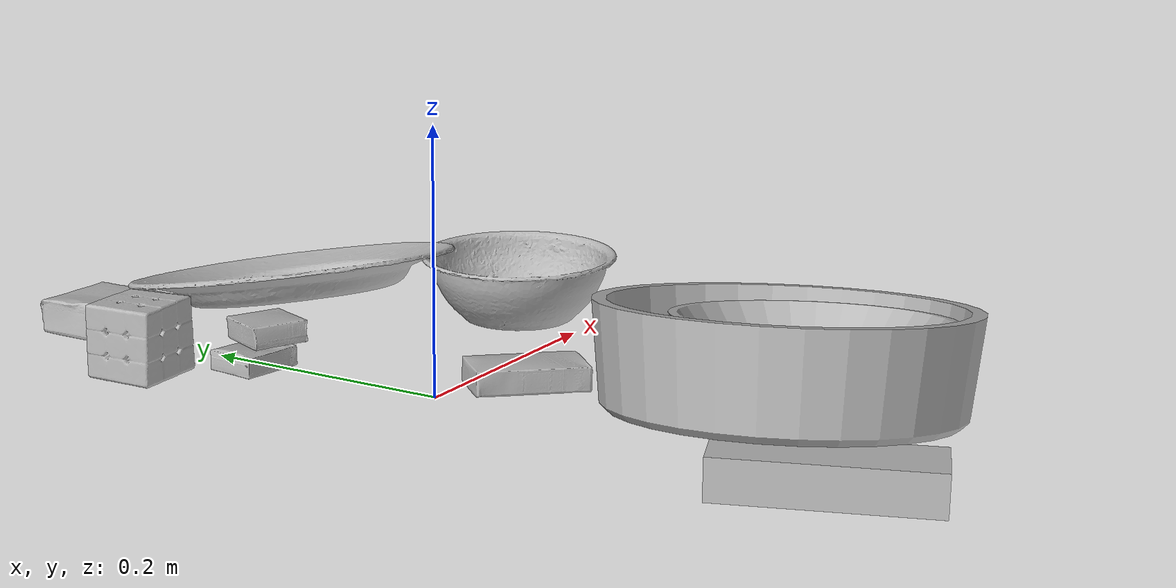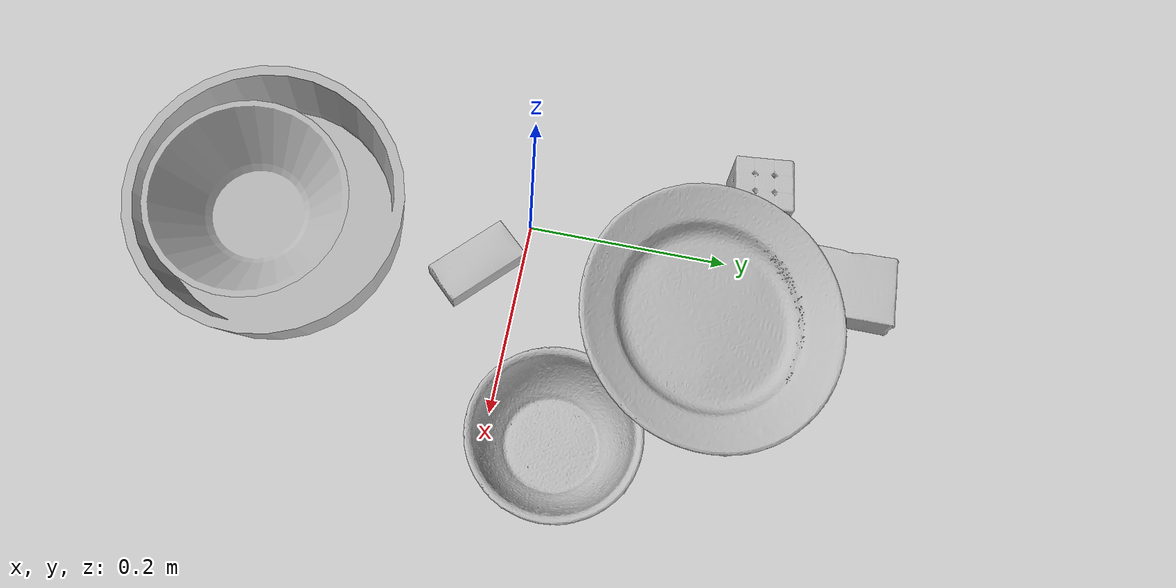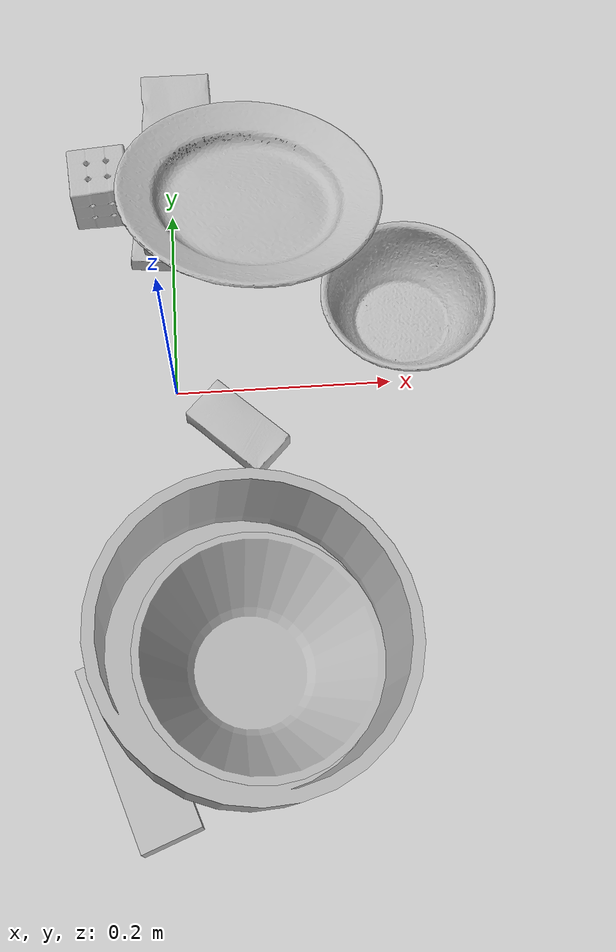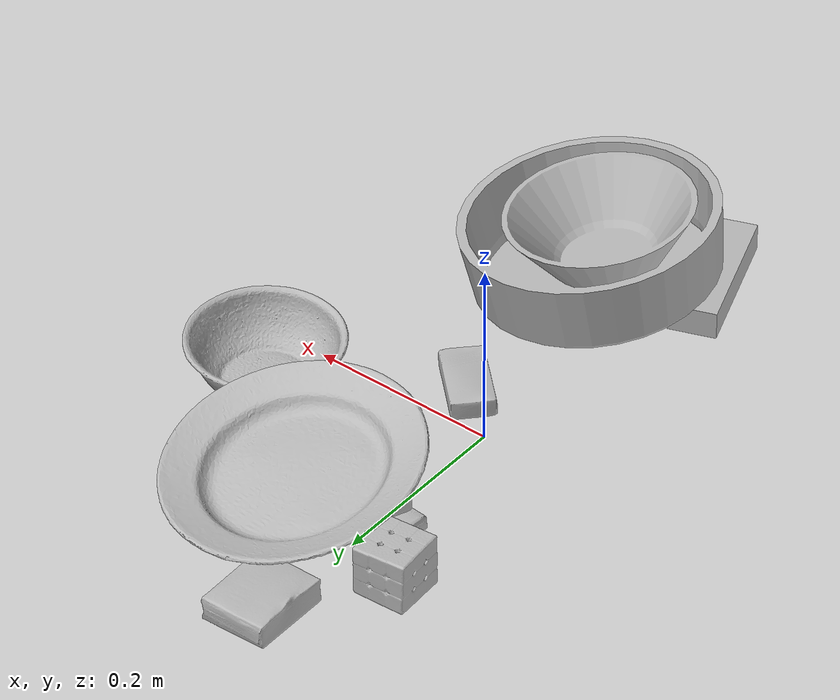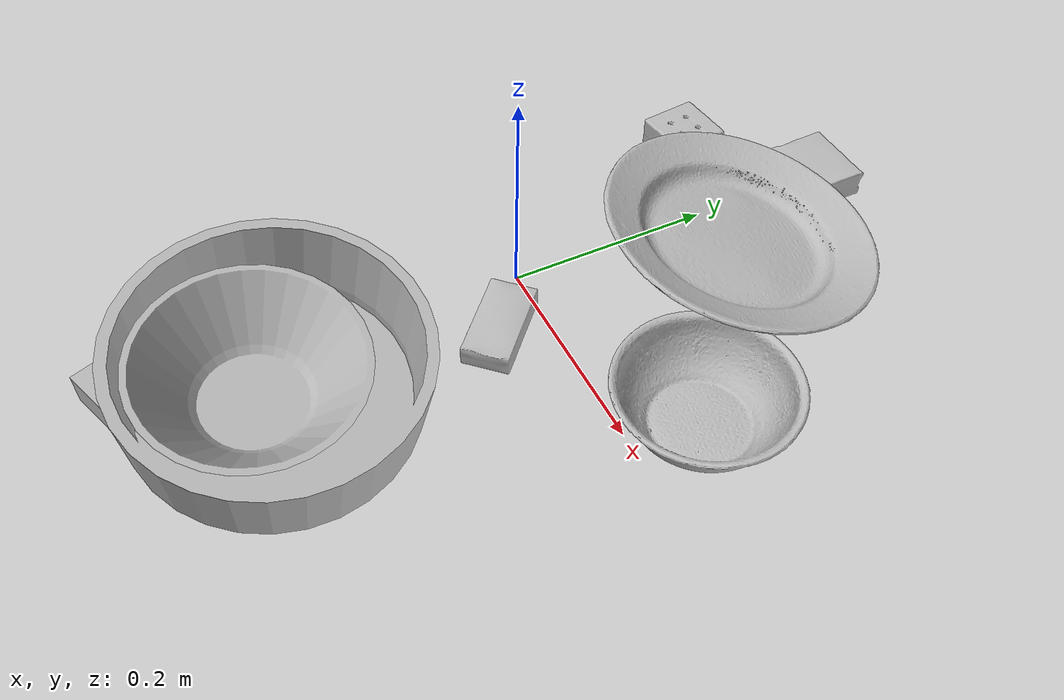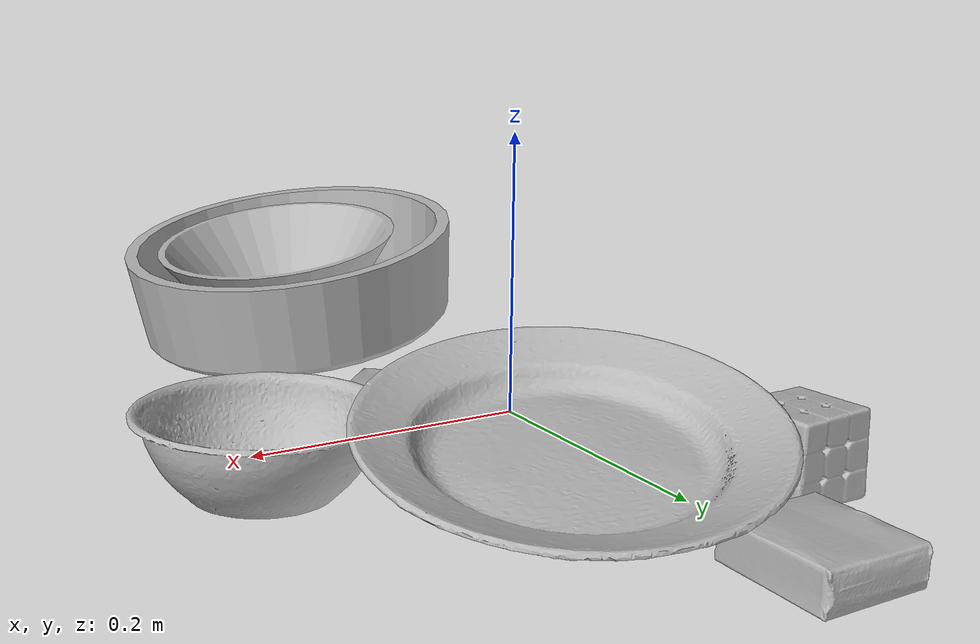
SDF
<sdf version="1.4">
  <world name="default">
    <light name="light1" type="point">
      <pose>0 0 1 0 0 0</pose>
      <diffuse>3 3 3 1</diffuse>
      <specular>3 3 3 1</specular>
    </light>
    <light name="light2" type="point">
      <pose>0 0.5 2 0 0 0</pose>
      <diffuse>1 1 1 1</diffuse>
      <specular>1 1 1 1</specular>
    </light>
    <light name="light3" type="point">
      <pose>0 0.5 2 0 0 0</pose>
      <diffuse>3 3 3 1</diffuse>
      <specular>3 3 3 1</specular>
    </light>
    <scene>
      <ambient>0.7 0.7 0.7</ambient>
    </scene>
    <model name="box1">
      <link name="link_box1">
        <collision name="default">
          <geometry>
            <mesh>
              <uri>model://sugar_box/collision_meshes/collision.obj</uri>
              <scale>0.5 0.5 0.5</scale>
            </mesh>
          </geometry>
          <surface>
            <friction>
              <ode>
                <mu>0.5</mu>
                <mu2>0.5</mu2>
              </ode>
            </friction>
          <contact>
        <ode>
            <max_vel>0</max_vel>
            <min_depth>0.0001</min_depth>
            <kp>1e8</kp>
        </ode>
    </contact></surface>
        </collision>
        <visual name="default">
          <geometry>
            <mesh>
              <uri>model://sugar_box/visual_meshes/visual.dae</uri>
              <scale>0.5 0.5 0.5</scale>
            </mesh>
          </geometry>
        </visual>
        <inertial>
          <mass>0.05968111753463745</mass>
          <pose>0.0005171863595023751 1.924554817378521e-05 -0.00018182402709499002 -0.00040462627153530444 0.0010506635220302928 0.002615378323275012</pose>
          <inertia>
            <ixx>1.2431535e-05</ixx>
            <iyy>4.0181283e-05</iyy>
            <izz>4.8101785e-05</izz>
            <ixy>0</ixy>
            <ixz>0</ixz>
            <iyz>0</iyz>
          </inertia>
        </inertial>
      </link>
      <pose>0.0551043376326561 -0.044116295874118805 0.011399303562939167 0.0007754755385173694 -0.023433299514393387 2.376065531835889</pose>
    </model>
    <model name="box11">
      <link name="link_box11">
        <collision name="default">
          <geometry>
            <mesh>
              <uri>model://cracker_box/collision_meshes/collision.obj</uri>
              <scale>0.25 0.25 0.25</scale>
            </mesh>
          </geometry>
          <surface>
            <friction>
              <ode>
                <mu>0.5</mu>
                <mu2>0.5</mu2>
              </ode>
            </friction>
          <contact>
        <ode>
            <max_vel>0</max_vel>
            <min_depth>0.0001</min_depth>
            <kp>1e8</kp>
        </ode>
    </contact></surface>
        </collision>
        <visual name="default">
          <geometry>
            <mesh>
              <uri>model://cracker_box/visual_meshes/visual.dae</uri>
              <scale>0.25 0.25 0.25</scale>
            </mesh>
          </geometry>
        </visual>
        <inertial>
          <mass>0.04741516709327698</mass>
          <pose>0.0002366035187151283 6.358561950037256e-05 -0.0004257383698131889 -0.00031620780351981393 -0.01110649053153066 0.0025467950031323855</pose>
          <inertia>
            <ixx>7.537689e-06</ixx>
            <iyy>1.2446206e-05</iyy>
            <izz>1.7761875e-05</izz>
            <ixy>0</ixy>
            <ixz>0</ixz>
            <iyz>0</iyz>
          </inertia>
        </inertial>
      </link>
      <pose>-0.01323692686855793 0.15690580010414124 0.009229427203536034 -0.001470082155822942 -0.017812197963839364 3.0500049874331334</pose>
    </model>
    <model name="box2">
      <link name="link_box2">
        <collision name="default">
          <geometry>
            <mesh>
              <uri>model://jenga/collision_meshes/collision.obj</uri>
              <scale>1.0 1.0 1.0</scale>
            </mesh>
          </geometry>
          <surface>
            <friction>
              <ode>
                <mu>0.5</mu>
                <mu2>0.5</mu2>
              </ode>
            </friction>
          <contact>
        <ode>
            <max_vel>0</max_vel>
            <min_depth>0.0001</min_depth>
            <kp>1e8</kp>
        </ode>
    </contact></surface>
        </collision>
        <visual name="default">
          <geometry>
            <mesh>
              <uri>model://jenga/visual_meshes/visual.dae</uri>
              <scale>1.0 1.0 1.0</scale>
            </mesh>
          </geometry>
        </visual>
        <inertial>
          <mass>0.17569443583488464</mass>
          <pose>-2.502855807051674e-07 -0.00010250010382151231 -4.0923401684267446e-05 0.0 -7.342153480750062e-07 0.0</pose>
          <inertia>
            <ixx>4.8618913e-05</ixx>
            <iyy>0.00032944046</iyy>
            <izz>0.0003517057</izz>
            <ixy>0</ixy>
            <ixz>0</ixz>
            <iyz>0</iyz>
          </inertia>
        </inertial>
      </link>
      <pose>-0.03690064325928688 -0.3202657699584961 0.015001011081039906 0.00017156980493293725 7.098625287871101e-05 1.9248750808706518</pose>
    </model>
    <model name="box21">
      <link name="link_box21">
        <collision name="default">
          <geometry>
            <mesh>
              <uri>model://rubiks_cube/collision_meshes/collision.obj</uri>
              <scale>1.0 1.0 1.0</scale>
            </mesh>
          </geometry>
          <surface>
            <friction>
              <ode>
                <mu>0.5</mu>
                <mu2>0.5</mu2>
              </ode>
            </friction>
          <contact>
        <ode>
            <max_vel>0</max_vel>
            <min_depth>0.0001</min_depth>
            <kp>1e8</kp>
        </ode>
    </contact></surface>
        </collision>
        <visual name="default">
          <geometry>
            <mesh>
              <uri>model://rubiks_cube/visual_meshes/visual.dae</uri>
              <scale>1.0 1.0 1.0</scale>
            </mesh>
          </geometry>
        </visual>
        <inertial>
          <mass>0.16427944600582123</mass>
          <pose>2.6721041649580002e-05 5.2569666877388954e-05 -7.2643156272533815e-06 -0.05467299197426534 -0.0981400693449792 -0.034455479534688374</pose>
          <inertia>
            <ixx>9.0775415e-05</ixx>
            <iyy>9.0352085e-05</iyy>
            <izz>9.152764e-05</izz>
            <ixy>0</ixy>
            <ixz>0</ixz>
            <iyz>0</iyz>
          </inertia>
        </inertial>
      </link>
      <pose>-0.06856478005647659 0.22056326270103455 0.0286786500364542 -2.899290861695579e-05 -1.1952115933782773e-05 -3.0540108625662428</pose>
    </model>
    <model name="box3">
      <link name="link_box3">
        <collision name="default">
          <geometry>
            <mesh>
              <uri>model://gelatin_box/collision_meshes/collision.obj</uri>
              <scale>1.0 1.0 1.0</scale>
            </mesh>
          </geometry>
          <surface>
            <friction>
              <ode>
                <mu>0.5</mu>
                <mu2>0.5</mu2>
              </ode>
            </friction>
          <contact>
        <ode>
            <max_vel>0</max_vel>
            <min_depth>0.0001</min_depth>
            <kp>1e8</kp>
        </ode>
    </contact></surface>
        </collision>
        <visual name="default">
          <geometry>
            <mesh>
              <uri>model://gelatin_box/visual_meshes/visual.dae</uri>
              <scale>1.0 1.0 1.0</scale>
            </mesh>
          </geometry>
        </visual>
        <inertial>
          <mass>0.21197354793548584</mass>
          <pose>0.0004319618456065655 0.00011156872642459348 -0.0003640321083366871 -0.0010503719594585892 -0.004755818227500045 0.016440553882781303</pose>
          <inertia>
            <ixx>0.00014963602</ixx>
            <iyy>0.00010688423</iyy>
            <izz>0.00022777937</izz>
            <ixy>0</ixy>
            <ixz>0</ixz>
            <iyz>0</iyz>
          </inertia>
        </inertial>
      </link>
      <pose>0.008316435851156712 0.3212587535381317 0.015168312937021255 0.005597403829588375 -0.007304509026970228 -3.1407333640971165</pose>
    </model>
    <model name="box31">
      <link name="link_box31">
        <collision name="default">
          <geometry>
            <mesh>
              <uri>model://pudding_box/collision_meshes/collision.obj</uri>
              <scale>0.5 0.5 0.5</scale>
            </mesh>
          </geometry>
          <surface>
            <friction>
              <ode>
                <mu>0.5</mu>
                <mu2>0.5</mu2>
              </ode>
            </friction>
          <contact>
        <ode>
            <max_vel>0</max_vel>
            <min_depth>0.0001</min_depth>
            <kp>1e8</kp>
        </ode>
    </contact></surface>
        </collision>
        <visual name="default">
          <geometry>
            <mesh>
              <uri>model://pudding_box/visual_meshes/visual.dae</uri>
              <scale>0.5 0.5 0.5</scale>
            </mesh>
          </geometry>
        </visual>
        <inertial>
          <mass>0.056796859949827194</mass>
          <pose>0.00024474109522998333 0.0004033942532259971 -0.0002594413817860186 0.005213102251005844 -0.00660379641961884 0.02007983447872704</pose>
          <inertia>
            <ixx>1.605148e-05</ixx>
            <iyy>1.0799551e-05</iyy>
            <izz>2.3704206e-05</izz>
            <ixy>0</ixy>
            <ixz>0</ixz>
            <iyz>0</iyz>
          </inertia>
        </inertial>
      </link>
      <pose>0.00512402830645442 0.1581776887178421 0.02706935442984104 0.04975895806853956 0.03522587996540271 2.64582573871501</pose>
    </model>
    <model name="plate1">
      <link name="link_plate1">
        <collision name="default">
          <geometry>
            <mesh>
              <uri>model://pan_tefal/collision_meshes/collision.obj</uri>
              <scale>1.0 1.0 1.0</scale>
            </mesh>
          </geometry>
          <surface>
            <friction>
              <ode>
                <mu>0.5</mu>
                <mu2>0.5</mu2>
              </ode>
            </friction>
          <contact>
        <ode>
            <max_vel>0</max_vel>
            <min_depth>0.0001</min_depth>
            <kp>1e8</kp>
        </ode>
    </contact></surface>
        </collision>
        <visual name="default">
          <geometry>
            <mesh>
              <uri>model://pan_tefal/visual_meshes/visual.dae</uri>
              <scale>1.0 1.0 1.0</scale>
            </mesh>
          </geometry>
        </visual>
        <inertial>
          <mass>1.4752264022827148</mass>
          <pose>-0.0001800210156943649 3.278951771790162e-05 -0.008514936082065105 0.0008190241607511121 -0.0003301478392365544 -0.33184922825406304</pose>
          <inertia>
            <ixx>0.010183416</ixx>
            <iyy>0.01024907</iyy>
            <izz>0.018745707</izz>
            <ixy>0</ixy>
            <ixz>0</ixz>
            <iyz>0</iyz>
          </inertia>
        </inertial>
      </link>
      <pose>0.056697405874729156 -0.24745556712150574 0.05482273921370506 0.1202027327590622 -0.09407640208575303 2.5896210882896704</pose>
    </model>
    <model name="bowl1">
      <link name="link_bowl1">
        <collision name="default">
          <geometry>
            <mesh>
              <uri>model://bowl/collision_meshes/collision.obj</uri>
              <scale>1.0 1.0 1.0</scale>
            </mesh>
          </geometry>
          <surface>
            <friction>
              <ode>
                <mu>0.5</mu>
                <mu2>0.5</mu2>
              </ode>
            </friction>
          <contact>
        <ode>
            <max_vel>0</max_vel>
            <min_depth>0.0001</min_depth>
            <kp>1e8</kp>
        </ode>
    </contact></surface>
        </collision>
        <visual name="default">
          <geometry>
            <mesh>
              <uri>model://bowl/visual_meshes/visual.dae</uri>
              <scale>1.0 1.0 1.0</scale>
            </mesh>
          </geometry>
        </visual>
        <inertial>
          <mass>0.13335108757019043</mass>
          <pose>0.00020445126574486494 -0.0010302079608663917 -0.0008042646804824471 -0.01576397865263616 0.014546905041115984 0.7140477796865206</pose>
          <inertia>
            <ixx>0.000306318</ixx>
            <iyy>0.00029947367</iyy>
            <izz>0.00051533245</izz>
            <ixy>0</ixy>
            <ixz>0</ixz>
            <iyz>0</iyz>
          </inertia>
        </inertial>
      </link>
      <pose>0.21864089369773865 0.06375130265951157 0.02778085134923458 4.1568240150518125e-07 2.7102797293218797e-05 1.9076647731376921</pose>
    </model>
    <model name="plate2">
      <link name="link_plate2">
        <collision name="default">
          <geometry>
            <mesh>
              <uri>model://plate/collision_meshes/collision.obj</uri>
              <scale>1.0 1.0 1.0</scale>
            </mesh>
          </geometry>
          <surface>
            <friction>
              <ode>
                <mu>0.5</mu>
                <mu2>0.5</mu2>
              </ode>
            </friction>
          <contact>
        <ode>
            <max_vel>0</max_vel>
            <min_depth>0.0001</min_depth>
            <kp>1e8</kp>
        </ode>
    </contact></surface>
        </collision>
        <visual name="default">
          <geometry>
            <mesh>
              <uri>model://plate/visual_meshes/visual.dae</uri>
              <scale>1.0 1.0 1.0</scale>
            </mesh>
          </geometry>
        </visual>
        <inertial>
          <mass>0.1753290891647339</mass>
          <pose>-0.0006044620531611145 0.0002782598021440208 -0.0010561987292021513 0.0022188066246853514 -0.003225466953145419 0.45260347799947726</pose>
          <inertia>
            <ixx>0.00082019315</ixx>
            <iyy>0.00081234827</iyy>
            <izz>0.0016041752</izz>
            <ixy>0</ixy>
            <ixz>0</ixz>
            <iyz>0</iyz>
          </inertia>
        </inertial>
      </link>
      <pose>0.077762171626091 0.188386932015419 0.04693065211176872 -0.15359135480419137 0.13924513381389678 0.30496783906089936</pose>
    </model>
    <model name="bowl2">
      <link name="link_bowl2">
        <collision name="default">
          <geometry>
            <mesh>
              <uri>model://bowl_a/collision_meshes/collision.obj</uri>
              <scale>1.0 1.0 1.0</scale>
            </mesh>
          </geometry>
          <surface>
            <friction>
              <ode>
                <mu>0.5</mu>
                <mu2>0.5</mu2>
              </ode>
            </friction>
          <contact>
        <ode>
            <max_vel>0</max_vel>
            <min_depth>0.0001</min_depth>
            <kp>1e8</kp>
        </ode>
    </contact></surface>
        </collision>
        <visual name="default">
          <geometry>
            <mesh>
              <uri>model://bowl_a/visual_meshes/visual.dae</uri>
              <scale>1.0 1.0 1.0</scale>
            </mesh>
          </geometry>
        </visual>
        <inertial>
          <mass>0.4813200831413269</mass>
          <pose>0.0002786751138046384 4.731064836960286e-05 -0.0013765294570475817 -0.0009805320964546374 -0.0010938264681851768 -0.19124047933057892</pose>
          <inertia>
            <ixx>0.0013703406</ixx>
            <iyy>0.0013787533</iyy>
            <izz>0.0024372027</izz>
            <ixy>0</ixy>
            <ixz>0</ixz>
            <iyz>0</iyz>
          </inertia>
        </inertial>
      </link>
      <pose>0.05946606770157814 -0.2662867307662964 0.055494509637355804 0.060376100694637835 -0.14092375893601186 3.1020821115432735</pose>
    </model>
  <physics type="ode">
      <max_contacts>50</max_contacts>
      <ode>
        <solver>
          <type>quick</type>
          <iters>75</iters>
        </solver>
        <constraints>
          <contact_max_correcting_vel>0</contact_max_correcting_vel>
          <contact_surface_layer>0</contact_surface_layer>
        </constraints>
      </ode>
    </physics></world>
</sdf>
